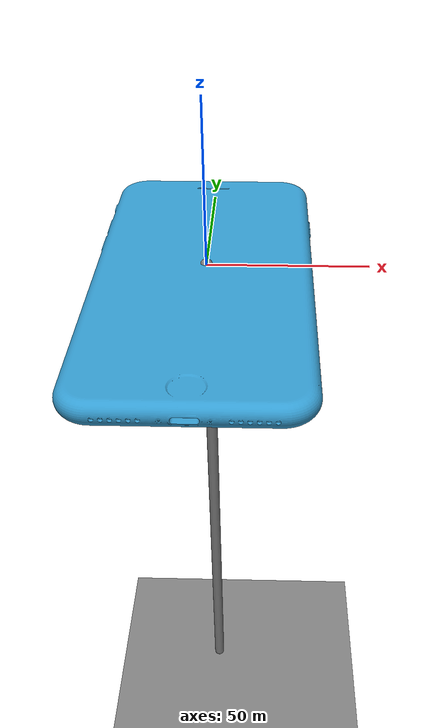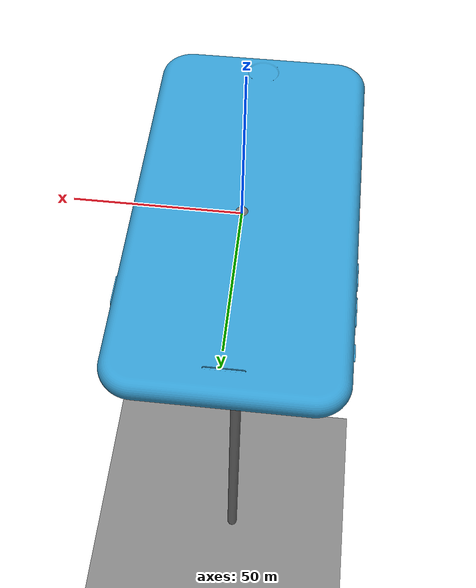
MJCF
<mujoco model="phone_model">
    <compiler angle="radian" coordinate="local" />

    <option gravity="0 0 0" />

    <asset>
        <!-- Load the STL mesh -->
        <mesh name="phone_mesh" file="iphone8.stl" />
    </asset>

    <worldbody>
        <geom name="ground" type="plane" size="500 500 0.1" pos="0 0 -250" rgba="0.5 0.5 0.5 1" contype="0" conaffinity="0" />

        <body name="phone" pos="0 0 0">
            <joint name="free_joint" type="free"/>
            <!-- Attach the mesh as a visual and collision object -->
            <geom type="mesh" mesh="phone_mesh" rgba="0.2 0.6 0.8 1" pos="-35 -135 -208" />

        </body>
        <body name="accel_body" pos="0 0 0">
            <joint name="v_a_hat_joint" type="free"/>
            <!-- Attach the mesh as a visual and collision object -->
            <geom name="vec_arrow" type="capsule" size="2 100" pos="0 0 -100"/>

        </body>
    </worldbody>
</mujoco>
